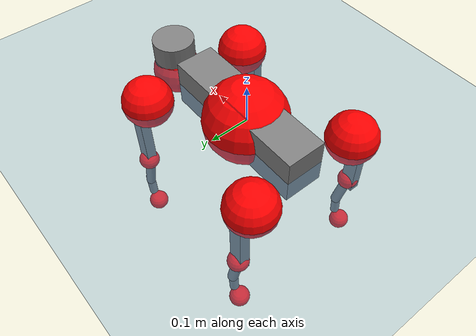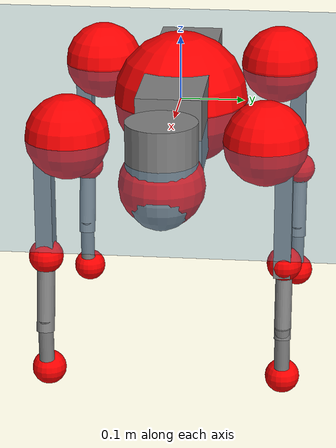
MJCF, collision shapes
<mujoco model="go2">
  <compiler angle="radian" assetdir="assets" balanceinertia="true" inertiafromgeom="false"/>

  <option timestep="0.005" density="1.2" viscosity="2e-05"/>

  <size nkey="1"/>

  <visual>
    <quality shadowsize="8192"/>
    <map shadowclip="0.5"/>
  </visual>

  <default>
    <default class="/">
      <geom contype="0" conaffinity="0" group="1" solref="-1000 -80"/>
      <site size="0.01 0.005 0.005" group="5"/>
      <general forcelimited="true" biastype="affine" gainprm="20" biasprm="0 -20 -0.5"/>
      <default class="go2">
        <joint armature="0.01" damping="0.01" frictionloss="0.2"/>
        <geom condim="1" margin="0.001"/>
        <default class="visual">
          <geom type="mesh" group="2"/>
        </default>
        <default class="collision">
          <geom group="3"/>
          <default class="foot">
            <geom size="0.022 0 0" condim="6" priority="1" friction="0.8 0.02 0.01" solimp="0.015 1 0.022"/>
          </default>
        </default>
        <default class="reward_collision_sphere">
          <geom group="5" rgba="1 0 0 1"/>
        </default>
      </default>
    </default>
  </default>

  <asset>
    <texture type="skybox" colorspace="auto" name="//unnamed_texture_0" builtin="gradient" rgb1="0.95 0.95 0.95" rgb2="0.95 0.95 0.95" width="100" height="600"/>
    <texture type="2d" colorspace="auto" name="texplane" builtin="checker" rgb1="0.345 0.575 0.748" rgb2="0.345 0.575 0.748" markrgb="1 1 1" width="512" height="512"/>
    <material name="MatPlane" class="/" texture="texplane" texuniform="true" texrepeat="2 2" specular="0.9"/>
    <material name="metal" class="/" rgba="0.9 0.95 0.95 1"/>
    <material name="black" class="/" rgba="0 0 0 1"/>
    <material name="white" class="/"/>
    <material name="gray" class="/" rgba="0.671705 0.692426 0.77427 1"/>
    <mesh name="base_0" class="/" file="base_0.obj"/>
    <mesh name="base_1" class="/" file="base_1.obj"/>
    <mesh name="base_2" class="/" file="base_2.obj"/>
    <mesh name="base_3" class="/" file="base_3.obj"/>
    <mesh name="base_4" class="/" file="base_4.obj"/>
    <mesh name="hip_0" class="/" file="hip_0.obj"/>
    <mesh name="hip_1" class="/" file="hip_1.obj"/>
    <mesh name="thigh_0" class="/" file="thigh_0.obj"/>
    <mesh name="thigh_1" class="/" file="thigh_1.obj"/>
    <mesh name="thigh_mirror_0" class="/" file="thigh_mirror_0.obj"/>
    <mesh name="thigh_mirror_1" class="/" file="thigh_mirror_1.obj"/>
    <mesh name="calf_0" class="/" file="calf_0.obj"/>
    <mesh name="calf_1" class="/" file="calf_1.obj"/>
    <mesh name="calf_mirror_0" class="/" file="calf_mirror_0.obj"/>
    <mesh name="calf_mirror_1" class="/" file="calf_mirror_1.obj"/>
    <mesh name="foot" class="/" file="foot.obj"/>
  </asset>

  <worldbody>
    <geom name="floor" class="/" size="100 100 0.125" type="plane" group="0" material="MatPlane"/>
    <light name="toplight_shadow" class="/" pos="0 0 5" dir="0.0990148 0.0990148 -0.990148" type="directional" ambient="0.04 0.04 0.04" diffuse="0.55 0.55 0.55" specular="0.12 0.12 0.12"/>
    <light name="toplight_fill" class="/" pos="0 0 5" dir="0.0990148 0.0990148 -0.990148" type="directional" castshadow="false" ambient="0.04 0.04 0.04" diffuse="0.3 0.3 0.3" specular="0.08 0.08 0.08"/>
    <body name="trunk" childclass="go2" pos="0.000654995 0.000674344 0.000990969" quat="1 3.97497e-05 7.29414e-06 3.89595e-05">
      <inertial pos="0.0235828 0.00113745 -0.00469005" quat="7.87697e-05 0.715252 -0.0251074 0.698415" mass="8.07943" diaginertia="0.109416 0.309246 0.0126874"/>
      <joint name="//unnamed_joint_0" type="free" armature="0" damping="0" frictionloss="0"/>
      <geom name="//unnamed_geom_1" class="visual" material="black" mesh="base_0"/>
      <geom name="//unnamed_geom_2" class="visual" material="black" mesh="base_1"/>
      <geom name="//unnamed_geom_3" class="visual" material="black" mesh="base_2"/>
      <geom name="//unnamed_geom_4" class="visual" material="white" mesh="base_3"/>
      <geom name="//unnamed_geom_5" class="visual" material="gray" mesh="base_4"/>
      <geom name="trunk_1" class="collision" size="0.197438 0.0490709 0.0598297" type="box"/>
      <geom name="trunk_2" class="collision" size="0.0524822 0.047234" pos="0.287479 0 0.00876497" type="cylinder"/>
      <geom name="trunk_3" class="collision" size="0.0493333" pos="0.295549 0 -0.0525898"/>
      <geom name="//unnamed_geom_9" class="reward_collision_sphere" size="0.104964"/>
      <geom name="//unnamed_geom_10" class="reward_collision_sphere" size="0.0629786" pos="0.282436 0 -0.0394424"/>
      <site name="imu" pos="-0.0278421 0.00636525 0.0404009" size="0.0104964"/>
      <camera name="track" pos="0 -2.52747 0" quat="0.707107 0.707107 0 0" mode="trackcom"/>
      <camera name="ego_camera" pos="0.314714 0 0.0394424" quat="-0.5 -0.5 0.5 0.5"/>
      <body name="FL_hip" pos="0.195409 0.0543216 -0.00275757" quat="1 -0.000247281 -8.62164e-05 0.000550511">
        <inertial pos="-0.00717415 0.00249217 0.00119463" quat="0.501939 0.495439 0.504146 0.498432" mass="0.795305" diaginertia="0.00092452 0.00198816 0.000244821"/>
        <joint name="FL_hip_joint" pos="0 0 0" axis="0.999999 -0.000852708 0.00122113" range="-1.14064 1.07983" armature="0.0103798" damping="0.0139427" frictionloss="0.214204"/>
        <geom name="//unnamed_geom_11" class="visual" material="metal" mesh="hip_0"/>
        <geom name="//unnamed_geom_12" class="visual" material="gray" mesh="hip_1"/>
        <geom name="//unnamed_geom_13" class="collision" size="0.0482836 0.0209929" pos="0 0.101099 0" quat="0.707107 0.707107 0 0" type="cylinder"/>
        <geom name="//unnamed_geom_14" class="reward_collision_sphere" size="0.0629786" pos="0 0.0884615 0"/>
        <body name="FL_thigh" pos="-0.00107458 0.116359 -0.00162929" quat="1 2.52466e-05 7.56338e-05 3.13107e-05">
          <inertial pos="-0.00368707 -0.0271669 -0.0265" quat="0.831221 0.0770462 -0.015569 0.550357" mass="1.3343" diaginertia="0.00630855 0.0189244 0.000440439"/>
          <joint name="FL_thigh_joint" pos="0 0 0" axis="-0.000450629 0.999995 -0.00302942" stiffness="0.000354044" range="-1.5334 3.43198" armature="0.00986865" damping="0.0199971" frictionloss="0.235302"/>
          <geom name="//unnamed_geom_15" class="visual" material="metal" mesh="thigh_0"/>
          <geom name="//unnamed_geom_16" class="visual" material="gray" mesh="thigh_1"/>
          <geom name="//unnamed_geom_17" class="collision" size="0.111787 0.0128581 0.0178439" pos="0 0 -0.0933469" quat="0.707107 0 0.707107 0" type="box"/>
          <body name="FL_calf" pos="-0.00373542 0.00281369 -0.188913" quat="1 0.000544197 0.000349473 -0.000450041">
            <inertial pos="0.00690293 -0.000966375 -0.119823" quat="0.710394 -0.00142538 -0.00503048 0.703785" mass="0.271135" diaginertia="0.00155166 0.0044864 2.84343e-05"/>
            <joint name="FL_calf_joint" pos="0 0 0" axis="0.00414418 0.999986 -0.00337576" range="-2.64786 -0.856271" armature="0.0101338" damping="0.010622" frictionloss="0.208125"/>
            <geom name="//unnamed_geom_18" class="visual" material="gray" mesh="calf_0"/>
            <geom name="//unnamed_geom_19" class="visual" material="black" mesh="calf_1"/>
            <geom name="FL_calf0" class="collision" size="0.0125957 0.0629786" pos="0.00806959 0 -0.0525898" quat="0.994493 0 -0.104807 0" type="cylinder"/>
            <geom name="//unnamed_geom_21" class="collision" size="0.0115461 0.0341134" pos="0.020174 0 -0.129722" quat="0.999688 0 0.0249974 0" type="cylinder"/>
            <geom name="//unnamed_geom_22" class="visual" pos="0 0 -0.186694" quat="1 0 0 0" material="black" mesh="foot"/>
            <geom name="FL_foot" class="foot" size="0.0190441" pos="-0.0020174 0 -0.186694"/>
            <geom name="//unnamed_geom_24" class="reward_collision_sphere" size="0.0262411"/>
            <geom name="//unnamed_geom_25" class="reward_collision_sphere" size="0.0262411" pos="-0.0020174 0 -0.186694"/>
            <site name="FL_foot" class="foot" pos="-0.0020174 0 -0.186694" size="0.0104964"/>
          </body>
        </body>
      </body>
      <body name="FR_hip" pos="0.198538 -0.0603391 -0.000899353" quat="1 0.000122072 0.000311687 -0.000411815">
        <inertial pos="-0.00764278 -0.00025155 0.00222883" quat="0.497431 0.506778 0.49865 0.497077" mass="0.811969" diaginertia="0.000903212 0.00205556 0.00024802"/>
        <joint name="FR_hip_joint" pos="0 0 0" axis="0.999997 0.00258207 -0.000378759" range="-1.05003 1.04418" armature="0.0118112" damping="0.0169387" frictionloss="0.236183"/>
        <geom name="//unnamed_geom_26" class="visual" pos="0 3.37347e-09 1.44695e-07" quat="4.63268e-05 1 0 0" material="metal" mesh="hip_0"/>
        <geom name="//unnamed_geom_27" class="visual" pos="0 5.46879e-09 -3.57886e-07" quat="4.63268e-05 1 0 0" material="gray" mesh="hip_1"/>
        <geom name="//unnamed_geom_28" class="collision" size="0.0482836 0.0209929" pos="0 -0.101099 0" quat="0.707107 0.707107 0 0" type="cylinder"/>
        <geom name="//unnamed_geom_29" class="reward_collision_sphere" size="0.0629786" pos="0 -0.0884615 0"/>
        <body name="FR_thigh" pos="-0.00313492 -0.125024 -0.00433926" quat="1 -3.2973e-05 0.000866631 -0.000395339">
          <inertial pos="-0.00585774 0.0322905 -0.028962" quat="0.547928 -0.0180019 0.0840393 0.832099" mass="1.31028" diaginertia="0.00616897 0.0185813 0.000433776"/>
          <joint name="FR_thigh_joint" pos="0 0 0" axis="0.00430883 -0.999977 0.00525257" range="-3.42728 1.56721" armature="0.0111351" damping="0.0244615" frictionloss="0.208352"/>
          <geom name="//unnamed_geom_30" class="visual" material="metal" mesh="thigh_mirror_0"/>
          <geom name="//unnamed_geom_31" class="visual" material="gray" mesh="thigh_mirror_1"/>
          <geom name="//unnamed_geom_32" class="collision" size="0.111787 0.0128581 0.0178439" pos="0 0 -0.0933469" quat="0.707107 0 0.707107 0" type="box"/>
          <body name="FR_calf" pos="0.00281244 0.000325884 -0.18711" quat="1 -0.000573749 0.000421556 -0.000561939">
            <inertial pos="0.00875553 0.00108908 -0.123761" quat="0.701538 -0.00687597 -0.00106439 0.712598" mass="0.281852" diaginertia="0.00160105 0.00469568 2.8318e-05"/>
            <joint name="FR_calf_joint" pos="0 0 0" axis="-0.00476964 -0.999816 0.0185766" range="0.877758 2.71464" armature="0.00906976" damping="0" frictionloss="0.227431"/>
            <geom name="//unnamed_geom_33" class="visual" material="gray" mesh="calf_mirror_0"/>
            <geom name="//unnamed_geom_34" class="visual" material="black" mesh="calf_mirror_1"/>
            <geom name="FR_calf0" class="collision" size="0.0136454 0.0629786" pos="0.010087 0 -0.0525898" quat="0.995004 0 -0.0998334 0" type="cylinder"/>
            <geom name="//unnamed_geom_36" class="collision" size="0.0115461 0.0341134" pos="0.020174 0 -0.129722" quat="0.999688 0 0.0249974 0" type="cylinder"/>
            <geom name="//unnamed_geom_37" class="visual" pos="0 0 -0.186694" quat="1 0 0 0" material="black" mesh="foot"/>
            <geom name="FR_foot" class="foot" size="0.0209444" pos="-0.0020174 0 -0.186694"/>
            <geom name="//unnamed_geom_39" class="reward_collision_sphere" size="0.0262411"/>
            <geom name="//unnamed_geom_40" class="reward_collision_sphere" size="0.0262411" pos="-0.0020174 0 -0.186694"/>
            <site name="FR_foot" class="foot" pos="-0.0020174 0 -0.186694" size="0.0104964"/>
          </body>
        </body>
      </body>
      <body name="RL_hip" pos="-0.19409 0.0570426 0.00156675" quat="0.999999 0.000139273 -0.000863869 -0.000574843">
        <inertial pos="0.00495089 0.00373585 0.00118432" quat="0.501877 0.49569 0.508087 0.494226" mass="0.831717" diaginertia="0.000945518 0.00197245 0.000257673"/>
        <joint name="RL_hip_joint" pos="0 0 0" axis="-0.99995 0.00824229 0.00567925" range="-0.997614 1.00195" armature="0.0105343" damping="0.00628664" frictionloss="0.234388"/>
        <geom name="//unnamed_geom_41" class="visual" pos="-1.15169e-09 0 -2.25757e-07" quat="4.63268e-05 0 1 0" material="metal" mesh="hip_0"/>
        <geom name="//unnamed_geom_42" class="visual" pos="-1.86702e-09 0 -2.00214e-07" quat="4.63268e-05 0 1 0" material="gray" mesh="hip_1"/>
        <geom name="//unnamed_geom_43" class="collision" size="0.0482836 0.0209929" pos="0 0.101099 0" quat="0.707107 0.707107 0 0" type="cylinder"/>
        <geom name="//unnamed_geom_44" class="reward_collision_sphere" size="0.0629786" pos="0 0.0884615 0"/>
        <body name="RL_thigh" pos="-0.000473651 0.120769 0.00353744" quat="0.999999 0.000447623 0.00064287 0.000975937">
          <inertial pos="-0.00388811 -0.0291177 -0.0255892" quat="0.827176 0.0888365 -0.0221233 0.554436" mass="1.29565" diaginertia="0.00619465 0.019932 0.000462442"/>
          <joint name="RL_thigh_joint" pos="0 0 0" axis="0.0212009 0.99977 0.00315306" range="-0.51109 4.55654" armature="0.0093673" damping="0.0133278" frictionloss="0.199451"/>
          <geom name="//unnamed_geom_45" class="visual" material="metal" mesh="thigh_0"/>
          <geom name="//unnamed_geom_46" class="visual" material="gray" mesh="thigh_1"/>
          <geom name="//unnamed_geom_47" class="collision" size="0.111787 0.0128581 0.0178439" pos="0 0 -0.0933469" quat="0.707107 0 0.707107 0" type="box"/>
          <body name="RL_calf" pos="0.000530852 0.00426986 -0.185306" quat="0.999999 -0.000518246 -0.00102076 0.000106844">
            <inertial pos="0.00534182 -0.00150107 -0.125713" quat="0.710235 0.00183841 -0.00510822 0.703944" mass="0.285816" diaginertia="0.00153806 0.00476306 2.79202e-05"/>
            <joint name="RL_calf_joint" pos="0 0 0" axis="-0.000706235 0.999999 0.000729052" range="-2.80175 -0.826981" armature="0.0101569" damping="0.00286278" frictionloss="0.218574"/>
            <geom name="//unnamed_geom_48" class="visual" material="gray" mesh="calf_0"/>
            <geom name="//unnamed_geom_49" class="visual" material="black" mesh="calf_1"/>
            <geom name="RL_calf0" class="collision" size="0.0136454 0.0629786" pos="0.010087 0 -0.0525898" quat="0.995004 0 -0.0998334 0" type="cylinder"/>
            <geom name="//unnamed_geom_51" class="collision" size="0.0115461 0.0341134" pos="0.020174 0 -0.129722" quat="0.999688 0 0.0249974 0" type="cylinder"/>
            <geom name="//unnamed_geom_52" class="visual" pos="0 0 -0.186694" quat="1 0 0 0" material="black" mesh="foot"/>
            <geom name="RL_foot" class="foot" size="0.0231842" pos="-0.0020174 0 -0.186694"/>
            <geom name="//unnamed_geom_54" class="reward_collision_sphere" size="0.0262411"/>
            <geom name="//unnamed_geom_55" class="reward_collision_sphere" size="0.0262411" pos="-0.0020174 0 -0.186694"/>
            <site name="RL_foot" class="foot" pos="-0.0020174 0 -0.186694" size="0.0104964"/>
          </body>
        </body>
      </body>
      <body name="RR_hip" pos="-0.19323 -0.0597018 0.000933379" quat="1 0.000401635 0.000732284 -0.000321167">
        <inertial pos="0.00775077 -0.00397537 -0.000722294" quat="0.49035 0.494058 0.505713 0.509624" mass="0.795867" diaginertia="0.000932157 0.00200928 0.000243394"/>
        <joint name="RR_hip_joint" pos="0 0 0" axis="-0.999921 -0.0118578 0.00407614" stiffness="0.00850339" range="-1.07938 1.10024" armature="0.0103586" damping="0.00595335" frictionloss="0.22322"/>
        <geom name="//unnamed_geom_56" class="visual" pos="1.16052e-09 3.37347e-09 -3.70452e-07" quat="2.14617e-09 4.63268e-05 4.63268e-05 -1" material="metal" mesh="hip_0"/>
        <geom name="//unnamed_geom_57" class="visual" pos="1.84518e-09 5.46879e-09 1.57672e-07" quat="2.14617e-09 4.63268e-05 4.63268e-05 -1" material="gray" mesh="hip_1"/>
        <geom name="//unnamed_geom_58" class="collision" size="0.0482836 0.0209929" pos="0 -0.101099 0" quat="0.707107 0.707107 0 0" type="cylinder"/>
        <geom name="//unnamed_geom_59" class="reward_collision_sphere" size="0.0629786" pos="0 -0.0884615 0"/>
        <body name="RR_thigh" pos="-0.000416849 -0.120962 -4.73114e-05" quat="1 0.00049192 5.65986e-05 0.000868153">
          <inertial pos="-0.00380014 0.0306909 -0.0277153" quat="0.552912 -0.0255248 0.07394 0.82956" mass="1.31587" diaginertia="0.00620116 0.0184995 0.000448923"/>
          <joint name="RR_thigh_joint" pos="0 0 0" axis="0.0156143 -0.999794 0.0129441" range="-4.49954 0.551" armature="0.01044" damping="0.0128194" frictionloss="0.232941"/>
          <geom name="//unnamed_geom_60" class="visual" material="metal" mesh="thigh_mirror_0"/>
          <geom name="//unnamed_geom_61" class="visual" material="gray" mesh="thigh_mirror_1"/>
          <geom name="//unnamed_geom_62" class="collision" size="0.111787 0.0128581 0.0178439" pos="0 0 -0.0933469" quat="0.707107 0 0.707107 0" type="box"/>
          <body name="RR_calf" pos="0.00542891 0.00212091 -0.184858" quat="1 -0.000736657 0.000369244 -0.000393576">
            <inertial pos="0.00157331 0.000671552 -0.126624" quat="0.695792 -0.00224193 0.00597077 0.718215" mass="0.274594" diaginertia="0.00148962 0.00451639 2.80016e-05"/>
            <joint name="RR_calf_joint" pos="0 0 0" axis="-0.0192142 -0.999806 0.00439951" range="0.861617 2.66666" armature="0.0118535" damping="0.00329999" frictionloss="0.200763"/>
            <geom name="//unnamed_geom_63" class="visual" material="gray" mesh="calf_mirror_0"/>
            <geom name="//unnamed_geom_64" class="visual" material="black" mesh="calf_mirror_1"/>
            <geom name="RR_calf0" class="collision" size="0.0136454 0.0629786" pos="0.010087 0 -0.0525898" quat="0.995004 0 -0.0998334 0" type="cylinder"/>
            <geom name="//unnamed_geom_66" class="collision" size="0.0115461 0.0341134" pos="0.020174 0 -0.129722" quat="0.999688 0 0.0249974 0" type="cylinder"/>
            <geom name="//unnamed_geom_67" class="visual" pos="0 0 -0.186694" quat="1 0 0 0" material="black" mesh="foot"/>
            <geom name="RR_foot" class="foot" size="0.0224512" pos="-0.0020174 0 -0.186694"/>
            <geom name="//unnamed_geom_69" class="reward_collision_sphere" size="0.0262411"/>
            <geom name="//unnamed_geom_70" class="reward_collision_sphere" size="0.0262411" pos="-0.0020174 0 -0.186694"/>
            <site name="RR_foot" class="foot" pos="-0.0020174 0 -0.186694" size="0.0104964"/>
          </body>
        </body>
      </body>
    </body>
  </worldbody>

  <contact>
    <pair class="/" geom1="floor" geom2="FL_foot" name="//unnamed_contact_0"/>
    <pair class="/" geom1="floor" geom2="FR_foot" name="//unnamed_contact_1"/>
    <pair class="/" geom1="floor" geom2="RL_foot" name="//unnamed_contact_2"/>
    <pair class="/" geom1="floor" geom2="RR_foot" name="//unnamed_contact_3"/>
  </contact>

  <actuator>
    <general name="FL_hip" class="/" joint="FL_hip_joint" forcerange="-20.7164 20.7164" gainprm="19.4633" biasprm="0 -19.4633 -0.559122"/>
    <general name="FL_thigh" class="/" joint="FL_thigh_joint" forcerange="-24.4318 24.4318" gainprm="19.4633" biasprm="0 -19.4633 -0.559122"/>
    <general name="FL_calf" class="/" joint="FL_calf_joint" forcerange="-42.9297 42.9297" gainprm="19.4633" biasprm="0 -19.4633 -0.559122"/>
    <general name="FR_hip" class="/" joint="FR_hip_joint" forcerange="-22.047 22.047" gainprm="19.4633" biasprm="0 -19.4633 -0.559122"/>
    <general name="FR_thigh" class="/" joint="FR_thigh_joint" forcerange="-22.011 22.011" gainprm="19.4633" biasprm="0 -19.4633 -0.559122"/>
    <general name="FR_calf" class="/" joint="FR_calf_joint" forcerange="-48.1446 48.1446" gainprm="19.4633" biasprm="0 -19.4633 -0.559122"/>
    <general name="RL_hip" class="/" joint="RL_hip_joint" forcerange="-22.5205 22.5205" gainprm="19.4633" biasprm="0 -19.4633 -0.559122"/>
    <general name="RL_thigh" class="/" joint="RL_thigh_joint" forcerange="-26.6943 26.6943" gainprm="19.4633" biasprm="0 -19.4633 -0.559122"/>
    <general name="RL_calf" class="/" joint="RL_calf_joint" forcerange="-45.4935 45.4935" gainprm="19.4633" biasprm="0 -19.4633 -0.559122"/>
    <general name="RR_hip" class="/" joint="RR_hip_joint" forcerange="-28.3583 28.3583" gainprm="19.4633" biasprm="0 -19.4633 -0.559122"/>
    <general name="RR_thigh" class="/" joint="RR_thigh_joint" forcerange="-23.3155 23.3155" gainprm="19.4633" biasprm="0 -19.4633 -0.559122"/>
    <general name="RR_calf" class="/" joint="RR_calf_joint" forcerange="-46.3993 46.3993" gainprm="19.4633" biasprm="0 -19.4633 -0.559122"/>
  </actuator>

  <sensor>
    <gyro site="imu" name="imu_angular_velocity"/>
    <velocimeter site="imu" name="imu_linear_velocity"/>
    <framelinvel objtype="site" objname="FL_foot" name="FL_foot_global_linear_velocity"/>
    <framelinvel objtype="site" objname="FR_foot" name="FR_foot_global_linear_velocity"/>
    <framelinvel objtype="site" objname="RL_foot" name="RL_foot_global_linear_velocity"/>
    <framelinvel objtype="site" objname="RR_foot" name="RR_foot_global_linear_velocity"/>
  </sensor>

  <keyframe>
    <key name="home" qpos="0 0 0.325 1 0 0 0 0.1 0.8 -1.5 -0.1 -0.8 1.5 -0.1 0.8 -1.5 0.1 -0.8 1.5"/>
  </keyframe>
</mujoco>
